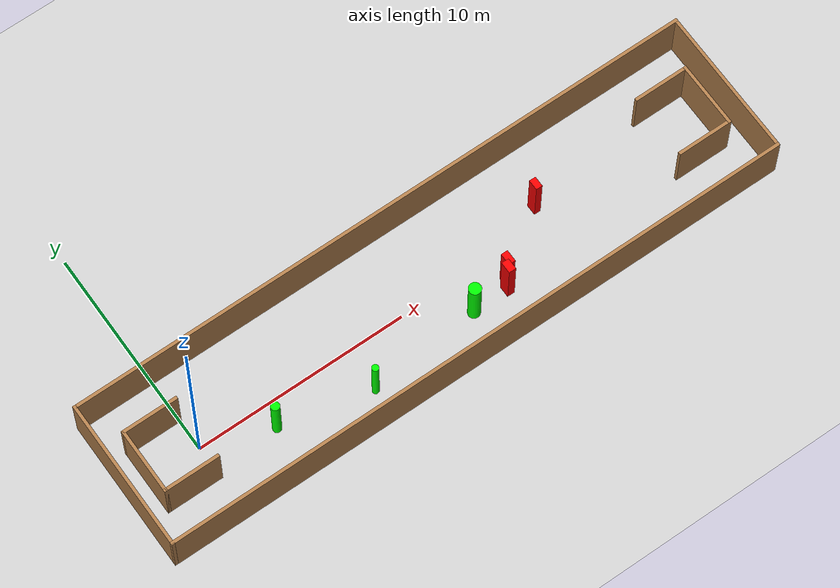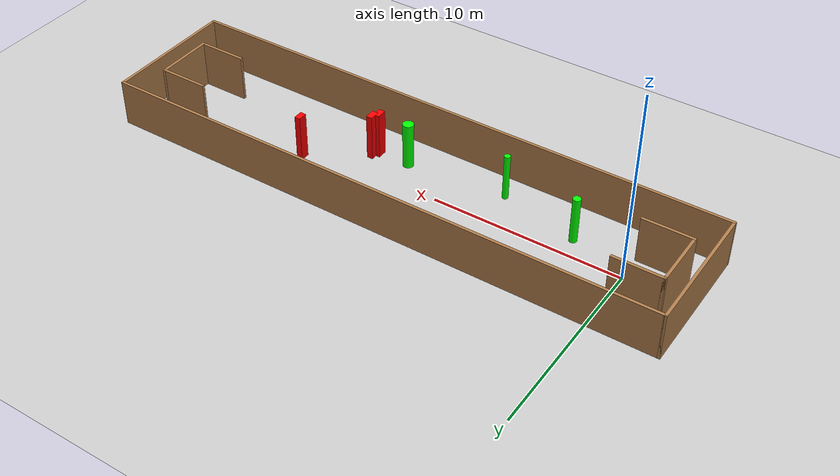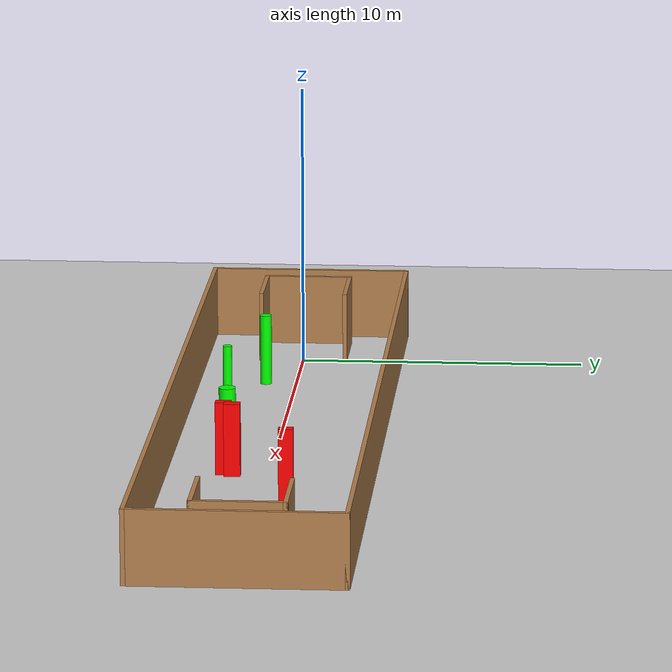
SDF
<sdf version="1.7">
 <world name="default">
  <light name="sun" type="directional">
   <pose>0 0 10 0 -0 0</pose>
   <diffuse>0.8 0.8 0.8 1</diffuse>
   <specular>0.2 0.2 0.2 1</specular>
   <attenuation>
    <range>1000</range>
    <constant>0.9</constant>
    <linear>0.01</linear>
    <quadratic>0.001</quadratic>
   </attenuation>
   <direction>-0.5 0.1 -0.9</direction>
   <spot><inner_angle>0</inner_angle><outer_angle>0</outer_angle><falloff>0</falloff></spot>
  </light>
  <model name="ground_plane">
   <static>1</static>
   <link name="link">
    <collision name="collision">
     <geometry><plane><normal>0 0 1</normal><size>100 100</size></plane></geometry>
     <surface>
      <contact><collide_bitmask>65535</collide_bitmask></contact>
      <friction><ode><mu>100</mu><mu2>50</mu2></ode></friction>
     </surface>
    </collision>
    <visual name="visual">
     <cast_shadows>0</cast_shadows>
     <geometry><plane><normal>0 0 1</normal><size>100 100</size></plane></geometry>
     <material>
      <script><uri>file://media/materials/scripts/gazebo.material</uri><name>Gazebo/Grey</name></script>
     </material>
    </visual>
   </link>
  </model>
  <gravity>0 0 -9.8</gravity>
  <magnetic_field>6e-06 2.3e-05 -4.2e-05</magnetic_field>
  <atmosphere type="adiabatic"/>
  <physics type="ode">
   <max_step_size>0.001</max_step_size>
   <real_time_factor>1</real_time_factor>
   <real_time_update_rate>1000</real_time_update_rate>
  </physics>
  <scene><ambient>0.4 0.4 0.4 1</ambient><background>0.7 0.7 0.7 1</background><shadows>1</shadows></scene>
  <spherical_coordinates>
   <surface_model>EARTH_WGS84</surface_model>
   <latitude_deg>0</latitude_deg>
   <longitude_deg>0</longitude_deg>
   <elevation>0</elevation>
   <heading_deg>0</heading_deg>
  </spherical_coordinates>
  <model name="my_base_walls">
   <link name="Wall_0">
    <collision name="Wall_0_Collision">
     <geometry><box><size>7.15 0.15 2.5</size></box></geometry>
     <pose>0 0 1.25 0 -0 0</pose>
    </collision>
    <visual name="Wall_0_Visual">
     <pose>0 0 1.25 0 -0 0</pose>
     <geometry><box><size>7.15 0.15 2.5</size></box></geometry>
     <material>
      <script><uri>file://media/materials/scripts/gazebo.material</uri><name>Gazebo/Wood</name></script>
      <ambient>1 1 1 1</ambient>
     </material>
     <meta><layer>0</layer></meta>
    </visual>
    <pose>-15 0 0 0 -0 1.5708</pose>
   </link>
   <link name="Wall_10">
    <collision name="Wall_10_Collision">
     <geometry><box><size>2.65 0.15 2.5</size></box></geometry>
     <pose>0 0 1.25 0 -0 0</pose>
    </collision>
    <visual name="Wall_10_Visual">
     <pose>0 0 1.25 0 -0 0</pose>
     <geometry><box><size>2.65 0.15 2.5</size></box></geometry>
     <material>
      <script><uri>file://media/materials/scripts/gazebo.material</uri><name>Gazebo/Wood</name></script>
      <ambient>1 1 1 1</ambient>
     </material>
     <meta><layer>0</layer></meta>
    </visual>
    <pose>-12.75 -1.5 0 0 -0 0</pose>
   </link>
   <link name="Wall_12">
    <collision name="Wall_12_Collision">
     <geometry><box><size>2.65 0.15 2.5</size></box></geometry>
     <pose>0 0 1.25 0 -0 0</pose>
    </collision>
    <visual name="Wall_12_Visual">
     <pose>0 0 1.25 0 -0 0</pose>
     <geometry><box><size>2.65 0.15 2.5</size></box></geometry>
     <material>
      <script><uri>file://media/materials/scripts/gazebo.material</uri><name>Gazebo/Wood</name></script>
      <ambient>1 1 1 1</ambient>
     </material>
     <meta><layer>0</layer></meta>
    </visual>
    <pose>-12.75 1.5 0 0 -0 0</pose>
   </link>
   <link name="Wall_14">
    <collision name="Wall_14_Collision">
     <geometry><box><size>3.15 0.15 2.5</size></box></geometry>
     <pose>0 0 1.25 0 -0 0</pose>
    </collision>
    <visual name="Wall_14_Visual">
     <pose>0 0 1.25 0 -0 0</pose>
     <geometry><box><size>3.15 0.15 2.5</size></box></geometry>
     <material>
      <script><uri>file://media/materials/scripts/gazebo.material</uri><name>Gazebo/Wood</name></script>
      <ambient>1 1 1 1</ambient>
     </material>
     <meta><layer>0</layer></meta>
    </visual>
    <pose>14 0 0 0 -0 -1.5708</pose>
   </link>
   <link name="Wall_15">
    <collision name="Wall_15_Collision">
     <geometry><box><size>2.65 0.15 2.5</size></box></geometry>
     <pose>0 0 1.25 0 -0 0</pose>
    </collision>
    <visual name="Wall_15_Visual">
     <pose>0 0 1.25 0 -0 0</pose>
     <geometry><box><size>2.65 0.15 2.5</size></box></geometry>
     <material>
      <script><uri>file://media/materials/scripts/gazebo.material</uri><name>Gazebo/Wood</name></script>
      <ambient>1 1 1 1</ambient>
     </material>
     <meta><layer>0</layer></meta>
    </visual>
    <pose>12.75 -1.5 0 0 -0 3.14159</pose>
   </link>
   <link name="Wall_17">
    <collision name="Wall_17_Collision">
     <geometry><box><size>2.65 0.15 2.5</size></box></geometry>
     <pose>0 0 1.25 0 -0 0</pose>
    </collision>
    <visual name="Wall_17_Visual">
     <pose>0 0 1.25 0 -0 0</pose>
     <geometry><box><size>2.65 0.15 2.5</size></box></geometry>
     <material>
      <script><uri>file://media/materials/scripts/gazebo.material</uri><name>Gazebo/Wood</name></script>
      <ambient>1 1 1 1</ambient>
     </material>
     <meta><layer>0</layer></meta>
    </visual>
    <pose>12.75 1.5 0 0 -0 3.14159</pose>
   </link>
   <link name="Wall_2">
    <collision name="Wall_2_Collision">
     <geometry><box><size>30.15 0.15 2.5</size></box></geometry>
     <pose>0 0 1.25 0 -0 0</pose>
    </collision>
    <visual name="Wall_2_Visual">
     <pose>0 0 1.25 0 -0 0</pose>
     <geometry><box><size>30.15 0.15 2.5</size></box></geometry>
     <material>
      <script><uri>file://media/materials/scripts/gazebo.material</uri><name>Gazebo/Wood</name></script>
      <ambient>1 1 1 1</ambient>
     </material>
     <meta><layer>0</layer></meta>
    </visual>
    <pose>-0 -3.5 0 0 -0 0</pose>
   </link>
   <link name="Wall_4">
    <collision name="Wall_4_Collision">
     <geometry><box><size>30.15 0.15 2.5</size></box></geometry>
     <pose>0 0 1.25 0 -0 0</pose>
    </collision>
    <visual name="Wall_4_Visual">
     <pose>0 0 1.25 0 -0 0</pose>
     <geometry><box><size>30.15 0.15 2.5</size></box></geometry>
     <material>
      <script><uri>file://media/materials/scripts/gazebo.material</uri><name>Gazebo/Wood</name></script>
      <ambient>1 1 1 1</ambient>
     </material>
     <meta><layer>0</layer></meta>
    </visual>
    <pose>-0 3.5 0 0 -0 0</pose>
   </link>
   <link name="Wall_6">
    <collision name="Wall_6_Collision">
     <geometry><box><size>7.15 0.15 2.5</size></box></geometry>
     <pose>0 0 1.25 0 -0 0</pose>
    </collision>
    <visual name="Wall_6_Visual">
     <pose>0 0 1.25 0 -0 0</pose>
     <geometry><box><size>7.15 0.15 2.5</size></box></geometry>
     <material>
      <script><uri>file://media/materials/scripts/gazebo.material</uri><name>Gazebo/Wood</name></script>
      <ambient>1 1 1 1</ambient>
     </material>
     <meta><layer>0</layer></meta>
    </visual>
    <pose>15 0 0 0 -0 -1.5708</pose>
   </link>
   <link name="Wall_9">
    <collision name="Wall_9_Collision">
     <geometry><box><size>3.15 0.15 2.5</size></box></geometry>
     <pose>0 0 1.25 0 -0 0</pose>
    </collision>
    <visual name="Wall_9_Visual">
     <pose>0 0 1.25 0 -0 0</pose>
     <geometry><box><size>3.15 0.15 2.5</size></box></geometry>
     <material>
      <script><uri>file://media/materials/scripts/gazebo.material</uri><name>Gazebo/Wood</name></script>
      <ambient>1 1 1 1</ambient>
     </material>
     <meta><layer>0</layer></meta>
    </visual>
    <pose>-14 0 0 0 -0 -1.5708</pose>
   </link>
   <static>1</static>
   <pose>11.5 0 0 0 -0 0</pose>
  </model>
  <model name="cylinder1">
   <static>1</static>
   <link name="link">
    <inertial>
     <mass>1</mass>
     <inertia><ixx>0.5</ixx><ixy>0</ixy><ixz>0</ixz><iyy>0.5</iyy><iyz>0</iyz><izz>1</izz></inertia>
    </inertial>
    <collision name="collision">
     <geometry><cylinder><radius>0.20235688831333362</radius><length>2.5</length></cylinder></geometry>
    </collision>
    <visual name="visual">
     <geometry><cylinder><radius>0.20235688831333362</radius><length>2.5</length></cylinder></geometry>
     <material>
      <ambient>0 1 0 1</ambient>
      <diffuse>0 1 0 1</diffuse>
      <specular>0.1 0.1 0.1 1</specular>
      <emissive>0 0 0 0</emissive>
     </material>
    </visual>
   </link>
   <pose>3.062293650957322 -1.0799259608648368 1.25 0 0 0</pose>
  </model>
  <model name="cylinder2">
   <static>1</static>
   <link name="link">
    <inertial>
     <mass>1</mass>
     <inertia><ixx>0.5</ixx><ixy>0</ixy><ixz>0</ixz><iyy>0.5</iyy><iyz>0</iyz><izz>1</izz></inertia>
    </inertial>
    <collision name="collision">
     <geometry><cylinder><radius>0.15716352708798956</radius><length>2.5</length></cylinder></geometry>
    </collision>
    <visual name="visual">
     <geometry><cylinder><radius>0.15716352708798956</radius><length>2.5</length></cylinder></geometry>
     <material>
      <ambient>0 1 0 1</ambient>
      <diffuse>0 1 0 1</diffuse>
      <specular>0.1 0.1 0.1 1</specular>
      <emissive>0 0 0 0</emissive>
     </material>
    </visual>
   </link>
   <pose>7.273203656414509 -2.0426915013488713 1.25 0 0 0</pose>
  </model>
  <model name="cylinder3">
   <static>1</static>
   <link name="link">
    <inertial>
     <mass>1</mass>
     <inertia><ixx>0.5</ixx><ixy>0</ixy><ixz>0</ixz><iyy>0.5</iyy><iyz>0</iyz><izz>1</izz></inertia>
    </inertial>
    <collision name="collision">
     <geometry><cylinder><radius>0.28325168029424375</radius><length>2.5</length></cylinder></geometry>
    </collision>
    <visual name="visual">
     <geometry><cylinder><radius>0.28325168029424375</radius><length>2.5</length></cylinder></geometry>
     <material>
      <ambient>0 1 0 1</ambient>
      <diffuse>0 1 0 1</diffuse>
      <specular>0.1 0.1 0.1 1</specular>
      <emissive>0 0 0 0</emissive>
     </material>
    </visual>
   </link>
   <pose>12.554567947391208 -1.5483550560626334 1.25 0 0 0</pose>
  </model>
  <model name="box1">
   <static>1</static>
   <link name="link">
    <inertial>
     <mass>1</mass>
     <inertia><ixx>0.083</ixx><ixy>0</ixy><ixz>0</ixz><iyy>0.083</iyy><iyz>0</iyz><izz>0.083</izz></inertia>
    </inertial>
    <collision name="collision">
     <geometry><box><size>0.31980614937348845 0.5529621792660803 2.5</size></box></geometry>
    </collision>
    <visual name="visual">
     <geometry><box><size>0.31980614937348845 0.5529621792660803 2.5</size></box></geometry>
     <material>
      <ambient>1 0 0 1</ambient>
      <diffuse>1 0 0 1</diffuse>
      <specular>0.1 0.1 0.1 1</specular>
      <emissive>0 0 0 0</emissive>
     </material>
    </visual>
    <sensor name="my_contact" type="contact">
     <contact><collision>box_collision</collision><topic>__default_topic__</topic></contact>
    </sensor>
   </link>
   <pose>14.45367478129323 -1.2157271366093951 1.25 0 0 0</pose>
  </model>
  <model name="box2">
   <static>1</static>
   <link name="link">
    <inertial>
     <mass>1</mass>
     <inertia><ixx>0.083</ixx><ixy>0</ixy><ixz>0</ixz><iyy>0.083</iyy><iyz>0</iyz><izz>0.083</izz></inertia>
    </inertial>
    <collision name="collision">
     <geometry><box><size>0.30795501859697066 0.4876836817393366 2.5</size></box></geometry>
    </collision>
    <visual name="visual">
     <geometry><box><size>0.30795501859697066 0.4876836817393366 2.5</size></box></geometry>
     <material>
      <ambient>1 0 0 1</ambient>
      <diffuse>1 0 0 1</diffuse>
      <specular>0.1 0.1 0.1 1</specular>
      <emissive>0 0 0 0</emissive>
     </material>
    </visual>
    <sensor name="my_contact" type="contact">
     <contact><collision>box_collision</collision><topic>__default_topic__</topic></contact>
    </sensor>
   </link>
   <pose>17.319298000357847 0.8191189636134864 1.25 0 0 0</pose>
  </model>
  <model name="box3">
   <static>1</static>
   <link name="link">
    <inertial>
     <mass>1</mass>
     <inertia><ixx>0.083</ixx><ixy>0</ixy><ixz>0</ixz><iyy>0.083</iyy><iyz>0</iyz><izz>0.083</izz></inertia>
    </inertial>
    <collision name="collision">
     <geometry><box><size>0.3473593582131592 0.5287808456831241 2.5</size></box></geometry>
    </collision>
    <visual name="visual">
     <geometry><box><size>0.3473593582131592 0.5287808456831241 2.5</size></box></geometry>
     <material>
      <ambient>1 0 0 1</ambient>
      <diffuse>1 0 0 1</diffuse>
      <specular>0.1 0.1 0.1 1</specular>
      <emissive>0 0 0 0</emissive>
     </material>
    </visual>
    <sensor name="my_contact" type="contact">
     <contact><collision>box_collision</collision><topic>__default_topic__</topic></contact>
    </sensor>
   </link>
   <pose>14.261618967165477 -1.5207173772802314 1.25 0 0 0</pose>
  </model>
 </world>
</sdf>
